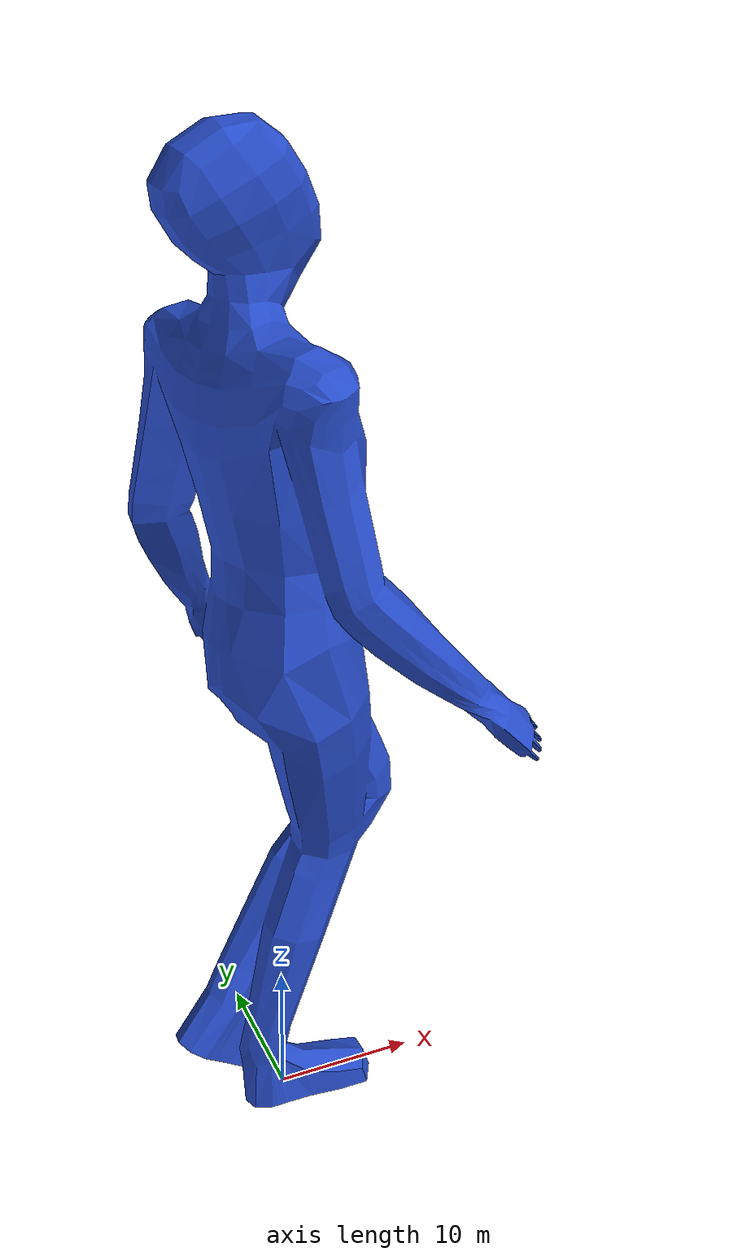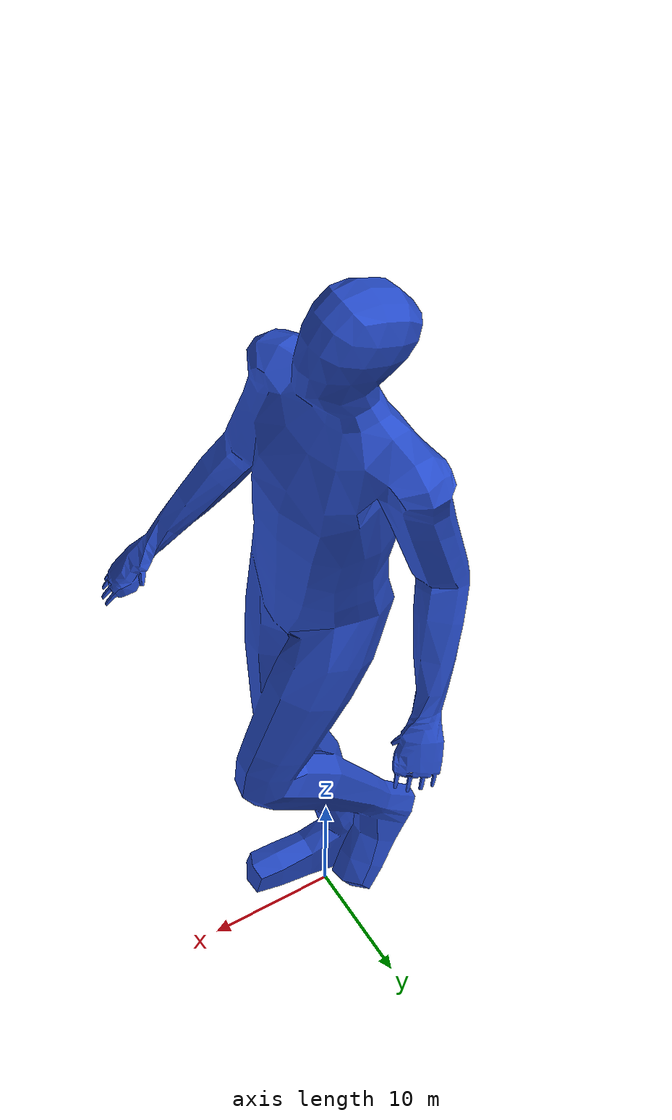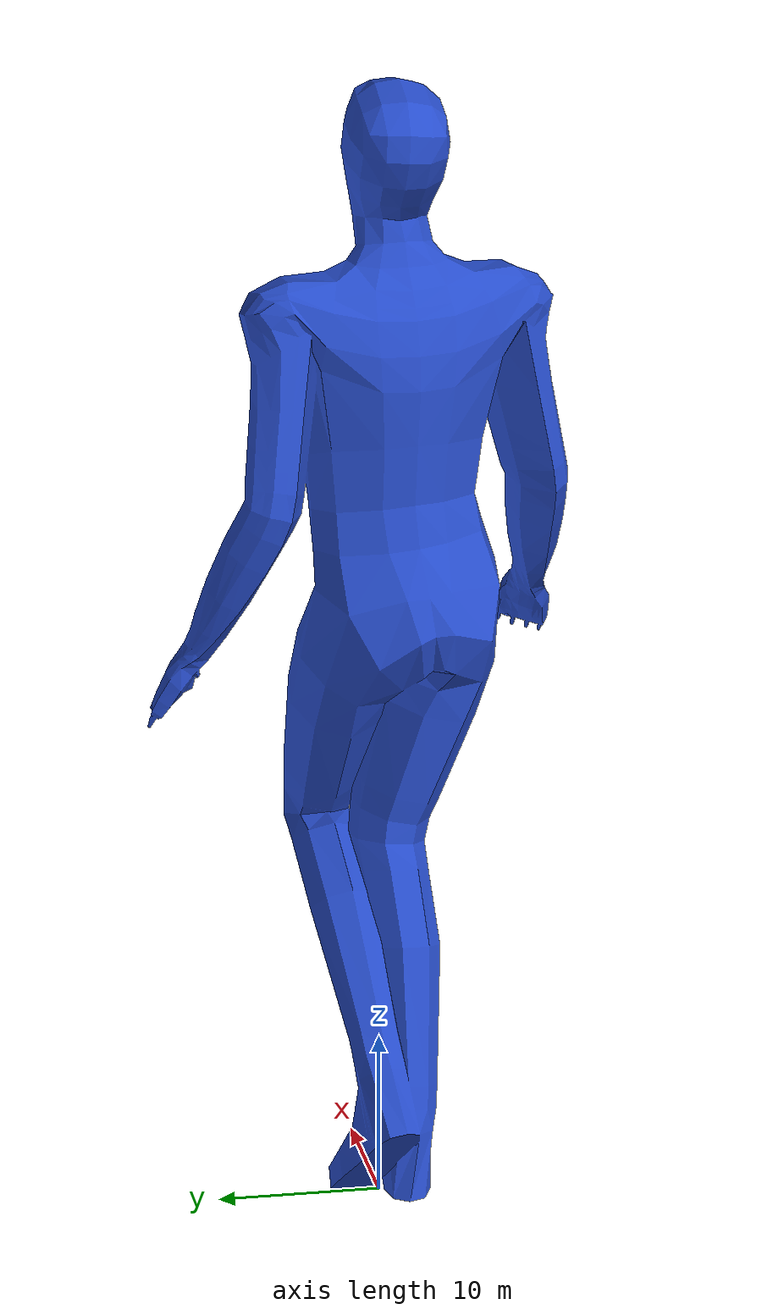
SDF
<?xml version='1.0'?>
<sdf version="1.4">
<model name="my_model">
  <pose>0 0 0.5 0 0 0</pose>
  <static>false</static>
    <link name="link">
      <inertial>
        <mass>1.0</mass>
        <inertia> <!-- interias are tricky to compute -->
          <!-- http://answers.gazebosim.org/question/4372/the-inertia-matrix-explained/ -->
          <ixx>0.083</ixx>       <!-- for a box: ixx = 0.083 * mass * (y*y + z*z) -->
          <ixy>0.0</ixy>         <!-- for a box: ixy = 0 -->
          <ixz>0.0</ixz>         <!-- for a box: ixz = 0 -->
          <iyy>0.083</iyy>       <!-- for a box: iyy = 0.083 * mass * (x*x + z*z) -->
          <iyz>0.0</iyz>         <!-- for a box: iyz = 0 -->
          <izz>0.083</izz>       <!-- for a box: izz = 0.083 * mass * (x*x + y*y) -->
        </inertia>
      </inertial>
      <collision name="collision">
        <geometry>
          <cylinder>
              <radius>0.25</radius>
              <length>1.0</length>
            </cylinder>
        </geometry>
      </collision>
      <visual name="visual">
        <geometry>
          <mesh>
						<uri>model://home/amattag/devel/catkin_ws/src/mrs_predictor/mrs_datmo/models/human.dae</uri>
					</mesh>
        </geometry>
        <material>
          <script>
            <name>Gazebo/Blue</name>
          </script>
        </material>
      </visual>
    </link>
  </model>
</sdf>
